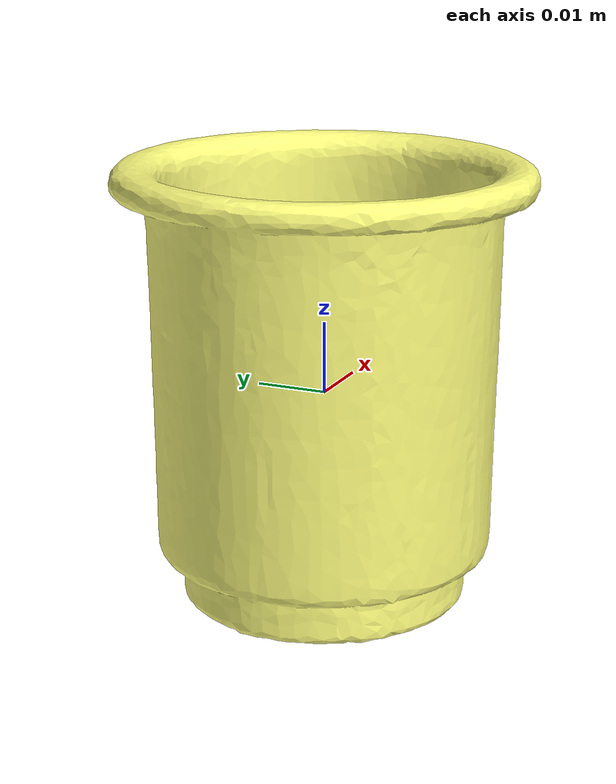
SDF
<?xml version="1.0" ?>
<sdf version='1.4'>
  <model name="cup_a">
      <static>0</static>
      <link name='link'>
        <inertial>
          <!-- Empty Weight = 32g -> 0.032, full weight (marbles) 206g ->.206-->
          <mass>0.032</mass>
          <inertia>
            <ixx>1.291e-7</ixx>
            <ixy>-1e-9</ixy>
            <ixz>2e-9</ixz>
            <iyy>1.272e-7</iyy>
            <iyz>5.2e-9</iyz>
            <izz>1.086e-7</izz>
          </inertia>
        </inertial>
        <collision name='collision'>
          <geometry>
            <mesh>
              <uri>model://cup_a/meshes/cup_a.stl</uri>
              <scale>1 1 1</scale>
            </mesh>
          </geometry>
          <surface>
            <friction>
              <ode>
                <mu>30.0</mu>
                <mu2>30.0</mu2>
              </ode>
            </friction>
          </surface>
        </collision>
        <visual name='visual'>
          <geometry>
            <mesh>
              <uri>model://cup_a/meshes/cup_a.dae</uri>
              <scale>1 1 1</scale>
            </mesh>
          </geometry>
          <material>
            <diffuse>1 1 0.5 1</diffuse>
          </material>
        </visual>
        <velocity_decay>
          <linear>0.000000</linear>
          <angular>0.000000</angular>
        </velocity_decay>
        <self_collide>0</self_collide>
        <kinematic>0</kinematic>
        <gravity>1</gravity>
      </link>
  </model>
</sdf>
